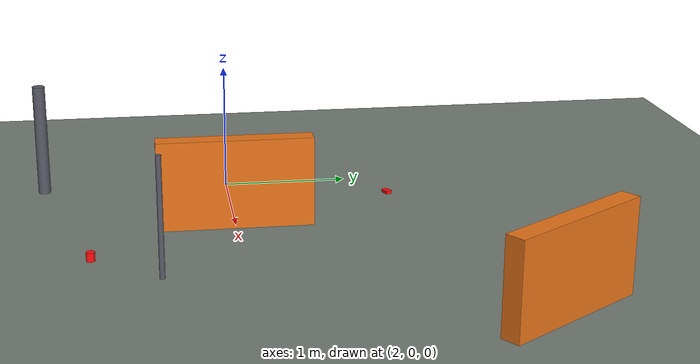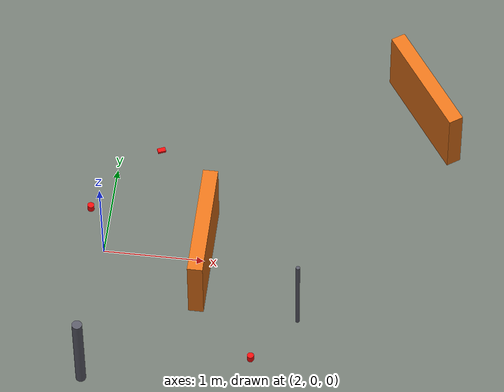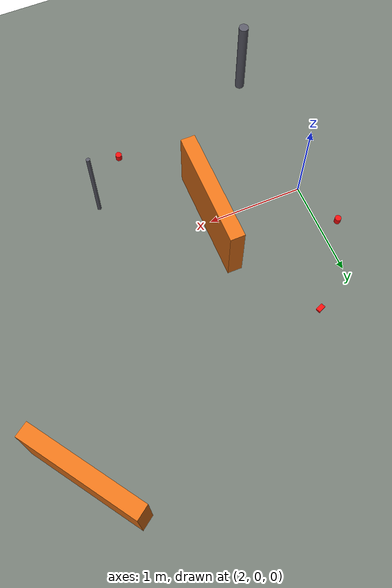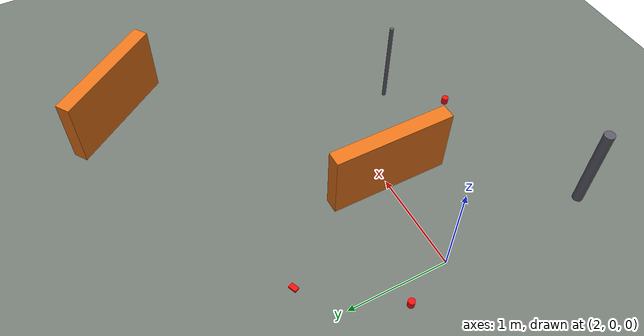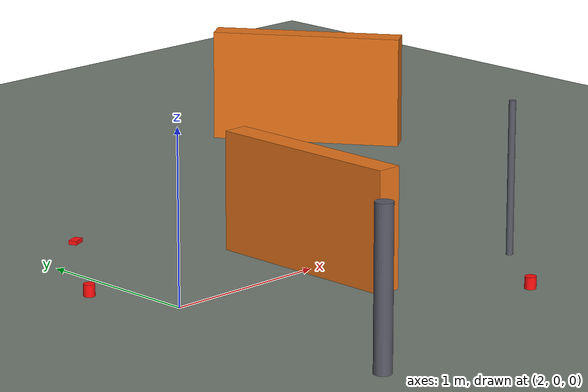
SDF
<?xml version="1.0"?>
<sdf version="1.10">
  <world name="test_field">

    <physics name="1ms" type="ignored">
      <max_step_size>0.001</max_step_size>
      <real_time_factor>1.0</real_time_factor>
    </physics>

    <plugin filename="gz-sim-physics-system"
            name="gz::sim::systems::Physics"/>
    <plugin filename="gz-sim-user-commands-system"
            name="gz::sim::systems::UserCommands"/>
    <plugin filename="gz-sim-scene-broadcaster-system"
            name="gz::sim::systems::SceneBroadcaster"/>
    <plugin filename="gz-sim-contact-system"
            name="gz::sim::systems::Contact"/>
    <plugin filename="gz-sim-imu-system"
            name="gz::sim::systems::Imu"/>
    <plugin filename="gz-sim-navsat-system"
            name="gz::sim::systems::NavSat"/>
    <plugin filename="gz-sim-sensors-system"
            name="gz::sim::systems::Sensors">
      <render_engine>ogre2</render_engine>
    </plugin>

    <spherical_coordinates>
      <surface_model>EARTH_WGS84</surface_model>
      <world_frame_orientation>ENU</world_frame_orientation>
      <latitude_deg>34.0522</latitude_deg>
      <longitude_deg>-118.2437</longitude_deg>
      <elevation>89.0</elevation>
    </spherical_coordinates>

    <gravity>0 0 -9.8</gravity>

    <light type="directional" name="sun">
      <cast_shadows>true</cast_shadows>
      <pose>0 0 10 0 0 0</pose>
      <diffuse>0.9 0.9 0.9 1</diffuse>
      <specular>0.3 0.3 0.3 1</specular>
      <direction>-0.5 0.3 -0.9</direction>
    </light>

    <!-- Ground. Friction is set for dry pavement; drop mu toward 0.4-0.5 to
         approximate wet grass when testing how the controller degrades. -->
    <model name="ground_plane">
      <static>true</static>
      <link name="link">
        <collision name="collision">
          <geometry><plane><normal>0 0 1</normal><size>100 100</size></plane></geometry>
          <surface>
            <friction><ode><mu>0.9</mu><mu2>0.9</mu2></ode></friction>
          </surface>
        </collision>
        <visual name="visual">
          <geometry><plane><normal>0 0 1</normal><size>100 100</size></plane></geometry>
          <material>
            <ambient>0.35 0.38 0.35 1</ambient>
            <diffuse>0.45 0.48 0.45 1</diffuse>
          </material>
        </visual>
      </link>
    </model>

    <!-- Obstacles. Boxes stand in for barriers, cylinders for chair legs and
         posts. Static so a collision does not send them flying and mask the
         fact that the robot failed to avoid them. -->
    <model name="barrier_front">
      <static>true</static>
      <pose>3.0 0 0.35 0 0 0</pose>
      <link name="link">
        <collision name="collision">
          <geometry><box><size>0.15 1.20 0.70</size></box></geometry>
        </collision>
        <visual name="visual">
          <geometry><box><size>0.15 1.20 0.70</size></box></geometry>
          <material><ambient>0.7 0.35 0.1 1</ambient><diffuse>0.9 0.45 0.1 1</diffuse></material>
        </visual>
      </link>
    </model>

    <model name="barrier_offset">
      <static>true</static>
      <pose>5.0 2.0 0.35 0 0 0.6</pose>
      <link name="link">
        <collision name="collision">
          <geometry><box><size>0.15 1.20 0.70</size></box></geometry>
        </collision>
        <visual name="visual">
          <geometry><box><size>0.15 1.20 0.70</size></box></geometry>
          <material><ambient>0.7 0.35 0.1 1</ambient><diffuse>0.9 0.45 0.1 1</diffuse></material>
        </visual>
      </link>
    </model>

    <model name="post_a">
      <static>true</static>
      <pose>2.0 -1.5 0.45 0 0 0</pose>
      <link name="link">
        <collision name="collision">
          <geometry><cylinder><radius>0.05</radius><length>0.90</length></cylinder></geometry>
        </collision>
        <visual name="visual">
          <geometry><cylinder><radius>0.05</radius><length>0.90</length></cylinder></geometry>
          <material><ambient>0.25 0.25 0.28 1</ambient><diffuse>0.35 0.35 0.4 1</diffuse></material>
        </visual>
      </link>
    </model>

    <!-- Thin post, right at the edge of what a 15 deg sonar cone can resolve at
         range. Useful as a deliberate hard case rather than an easy win. -->
    <model name="post_thin">
      <static>true</static>
      <pose>4.0 -0.6 0.45 0 0 0</pose>
      <link name="link">
        <collision name="collision">
          <geometry><cylinder><radius>0.02</radius><length>0.90</length></cylinder></geometry>
        </collision>
        <visual name="visual">
          <geometry><cylinder><radius>0.02</radius><length>0.90</length></cylinder></geometry>
          <material><ambient>0.25 0.25 0.28 1</ambient><diffuse>0.35 0.35 0.4 1</diffuse></material>
        </visual>
      </link>
    </model>

    <model name="litter_can_a">
      <pose>1.8 0.5 0.035 0 0 0</pose>
      <link name="link">
        <inertial>
          <mass>0.015</mass>
          <inertia><ixx>7e-6</ixx><iyy>7e-6</iyy><izz>4e-6</izz>
                   <ixy>0</ixy><ixz>0</ixz><iyz>0</iyz></inertia>
        </inertial>
        <collision name="collision">
          <geometry><cylinder><radius>0.033</radius><length>0.07</length></cylinder></geometry>
        </collision>
        <visual name="visual">
          <geometry><cylinder><radius>0.033</radius><length>0.07</length></cylinder></geometry>
          <material><ambient>0.8 0.05 0.05 1</ambient><diffuse>1.0 0.05 0.05 1</diffuse></material>
        </visual>
      </link>
    </model>

    <model name="litter_can_b">
      <pose>3.6 -1.1 0.035 0 0 0</pose>
      <link name="link">
        <inertial>
          <mass>0.015</mass>
          <inertia><ixx>7e-6</ixx><iyy>7e-6</iyy><izz>4e-6</izz>
                   <ixy>0</ixy><ixz>0</ixz><iyz>0</iyz></inertia>
        </inertial>
        <collision name="collision">
          <geometry><cylinder><radius>0.033</radius><length>0.07</length></cylinder></geometry>
        </collision>
        <visual name="visual">
          <geometry><cylinder><radius>0.033</radius><length>0.07</length></cylinder></geometry>
          <material><ambient>0.8 0.05 0.05 1</ambient><diffuse>1.0 0.05 0.05 1</diffuse></material>
        </visual>
      </link>
    </model>

    <model name="litter_wrapper">
      <pose>2.4 1.3 0.012 0 0 0.4</pose>
      <link name="link">
        <inertial>
          <mass>0.005</mass>
          <inertia><ixx>2e-6</ixx><iyy>2e-6</iyy><izz>2e-6</izz>
                   <ixy>0</ixy><ixz>0</ixz><iyz>0</iyz></inertia>
        </inertial>
        <collision name="collision">
          <geometry><box><size>0.08 0.05 0.024</size></box></geometry>
        </collision>
        <visual name="visual">
          <geometry><box><size>0.08 0.05 0.024</size></box></geometry>
          <material><ambient>0.8 0.05 0.05 1</ambient><diffuse>1.0 0.05 0.05 1</diffuse></material>
        </visual>
      </link>
    </model>

  </world>
</sdf>
